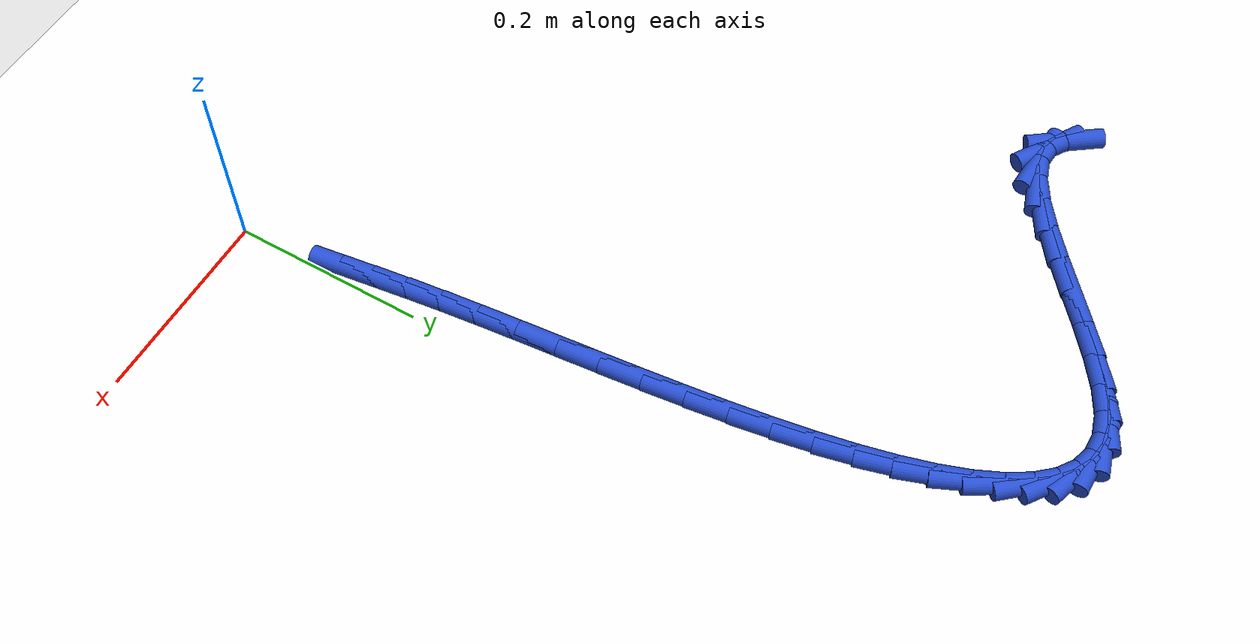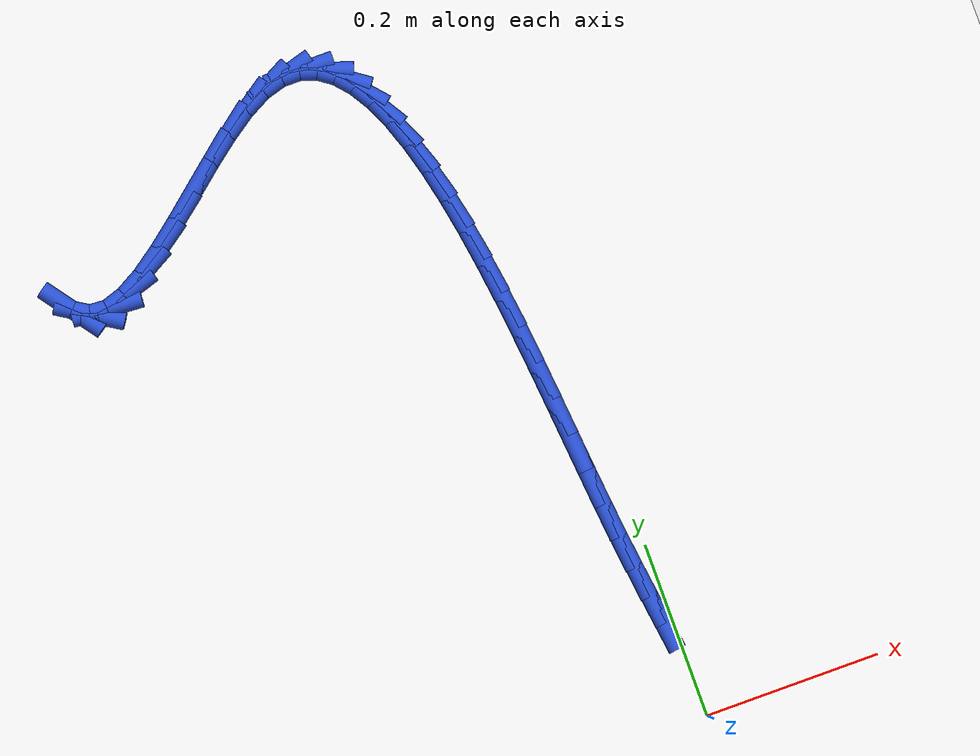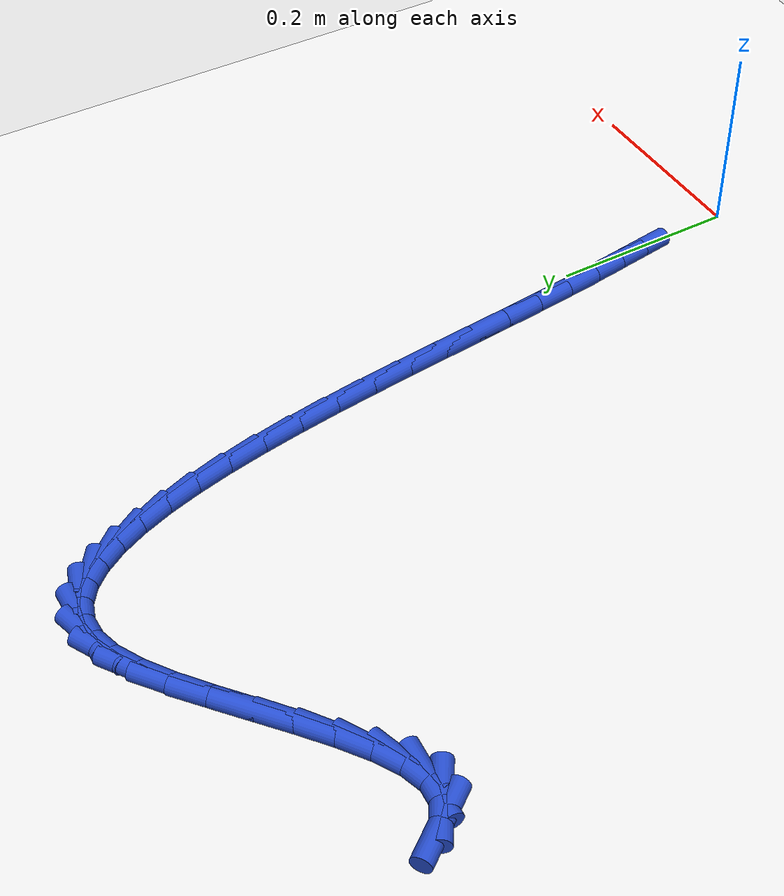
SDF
<sdf version="1.6">
 <world name="default">
  <model name="ground_plane">
   <static>1</static>
   <link name="link">
    <collision name="collision">
     <geometry><plane><normal>0 0 1</normal><size>100 100</size></plane></geometry>
     <surface><friction><ode><mu>100</mu><mu2>50</mu2></ode></friction></surface>
    </collision>
    <visual name="visual">
     <cast_shadows>0</cast_shadows>
     <geometry><plane><normal>0 0 1</normal><size>100 100</size></plane></geometry>
     <material>
      <script><uri>file://media/materials/scripts/gazebo.material</uri><name>Gazebo/WhiteGlow</name></script>
     </material>
    </visual>
   </link>
  </model>
  <model name="line">
   <link name="link_4">
    <pose>-0.011608350229617839 0.1196897497009344 0.01 0 1.57 -1.4349537684915146</pose>
    <collision name="collision">
     <geometry><cylinder><radius>0.01</radius><length>0.08</length></cylinder></geometry>
    </collision>
    <visual name="visual">
     <material>
      <script><name>Gazebo/Blue</name><uri>file://media/materials/scripts/gazebo.material</uri></script>
     </material>
     <geometry><cylinder><radius>0.01</radius><length>0.08</length></cylinder></geometry>
    </visual>
   </link>
   <link name="link_5">
    <pose>-0.01592034555189139 0.15123685332823003 0.01 0 1.57 -1.4374561681270017</pose>
    <collision name="collision">
     <geometry><cylinder><radius>0.01</radius><length>0.08</length></cylinder></geometry>
    </collision>
    <visual name="visual">
     <material>
      <script><name>Gazebo/Blue</name><uri>file://media/materials/scripts/gazebo.material</uri></script>
     </material>
     <geometry><cylinder><radius>0.01</radius><length>0.08</length></cylinder></geometry>
    </visual>
   </link>
   <link name="link_6">
    <pose>-0.020369244106530203 0.18440391080652804 0.01 0 1.57 -1.447466917418745</pose>
    <collision name="collision">
     <geometry><cylinder><radius>0.01</radius><length>0.08</length></cylinder></geometry>
    </collision>
    <visual name="visual">
     <material>
      <script><name>Gazebo/Blue</name><uri>file://media/materials/scripts/gazebo.material</uri></script>
     </material>
     <geometry><cylinder><radius>0.01</radius><length>0.08</length></cylinder></geometry>
    </visual>
   </link>
   <link name="link_7">
    <pose>-0.02474151595674313 0.21967596582091728 0.01 0 1.57 -1.4618403567247256</pose>
    <collision name="collision">
     <geometry><cylinder><radius>0.01</radius><length>0.08</length></cylinder></geometry>
    </collision>
    <visual name="visual">
     <material>
      <script><name>Gazebo/Blue</name><uri>file://media/materials/scripts/gazebo.material</uri></script>
     </material>
     <geometry><cylinder><radius>0.01</radius><length>0.08</length></cylinder></geometry>
    </visual>
   </link>
   <link name="link_8">
    <pose>-0.028869115283309703 0.25740912460940285 0.01 0 1.57 -1.4722458426684462</pose>
    <collision name="collision">
     <geometry><cylinder><radius>0.01</radius><length>0.08</length></cylinder></geometry>
    </collision>
    <visual name="visual">
     <material>
      <script><name>Gazebo/Blue</name><uri>file://media/materials/scripts/gazebo.material</uri></script>
     </material>
     <geometry><cylinder><radius>0.01</radius><length>0.08</length></cylinder></geometry>
    </visual>
   </link>
   <link name="link_9">
    <pose>-0.032813919533488854 0.2973077116323413 0.01 0 1.57 -1.4773231016164692</pose>
    <collision name="collision">
     <geometry><cylinder><radius>0.01</radius><length>0.08</length></cylinder></geometry>
    </collision>
    <visual name="visual">
     <material>
      <script><name>Gazebo/Blue</name><uri>file://media/materials/scripts/gazebo.material</uri></script>
     </material>
     <geometry><cylinder><radius>0.01</radius><length>0.08</length></cylinder></geometry>
    </visual>
   </link>
   <link name="link_10">
    <pose>-0.03671028916036978 0.33887057800625286 0.01 0 1.57 -1.477858585893769</pose>
    <collision name="collision">
     <geometry><cylinder><radius>0.01</radius><length>0.08</length></cylinder></geometry>
    </collision>
    <visual name="visual">
     <material>
      <script><name>Gazebo/Blue</name><uri>file://media/materials/scripts/gazebo.material</uri></script>
     </material>
     <geometry><cylinder><radius>0.01</radius><length>0.08</length></cylinder></geometry>
    </visual>
   </link>
   <link name="link_11">
    <pose>-0.04069261187931073 0.38159649756513436 0.01 0 1.57 -1.4742346559800295</pose>
    <collision name="collision">
     <geometry><cylinder><radius>0.01</radius><length>0.08</length></cylinder></geometry>
    </collision>
    <visual name="visual">
     <material>
      <script><name>Gazebo/Blue</name><uri>file://media/materials/scripts/gazebo.material</uri></script>
     </material>
     <geometry><cylinder><radius>0.01</radius><length>0.08</length></cylinder></geometry>
    </visual>
   </link>
   <link name="link_12">
    <pose>-0.04489527540566993 0.4249842441429827 0.01 0 1.57 -1.4665245592092344</pose>
    <collision name="collision">
     <geometry><cylinder><radius>0.01</radius><length>0.08</length></cylinder></geometry>
    </collision>
    <visual name="visual">
     <material>
      <script><name>Gazebo/Blue</name><uri>file://media/materials/scripts/gazebo.material</uri></script>
     </material>
     <geometry><cylinder><radius>0.01</radius><length>0.08</length></cylinder></geometry>
    </visual>
   </link>
   <link name="link_13">
    <pose>-0.04945266745480564 0.46853259157379484 0.01 0 1.57 -1.454526667403661</pose>
    <collision name="collision">
     <geometry><cylinder><radius>0.01</radius><length>0.08</length></cylinder></geometry>
    </collision>
    <visual name="visual">
     <material>
      <script><name>Gazebo/Blue</name><uri>file://media/materials/scripts/gazebo.material</uri></script>
     </material>
     <geometry><cylinder><radius>0.01</radius><length>0.08</length></cylinder></geometry>
    </visual>
   </link>
   <link name="link_14">
    <pose>-0.05449917574207611 0.5117403136915678 0.01 0 1.57 -1.4377524808276965</pose>
    <collision name="collision">
     <geometry><cylinder><radius>0.01</radius><length>0.08</length></cylinder></geometry>
    </collision>
    <visual name="visual">
     <material>
      <script><name>Gazebo/Blue</name><uri>file://media/materials/scripts/gazebo.material</uri></script>
     </material>
     <geometry><cylinder><radius>0.01</radius><length>0.08</length></cylinder></geometry>
    </visual>
   </link>
   <link name="link_15">
    <pose>-0.06016918798283958 0.5541061843302981 0.01 0 1.57 -1.4153690892996147</pose>
    <collision name="collision">
     <geometry><cylinder><radius>0.01</radius><length>0.08</length></cylinder></geometry>
    </collision>
    <visual name="visual">
     <material>
      <script><name>Gazebo/Blue</name><uri>file://media/materials/scripts/gazebo.material</uri></script>
     </material>
     <geometry><cylinder><radius>0.01</radius><length>0.08</length></cylinder></geometry>
    </visual>
   </link>
   <link name="link_16">
    <pose>-0.06659709189245427 0.595128977323983 0.01 0 1.57 -1.3860842035228762</pose>
    <collision name="collision">
     <geometry><cylinder><radius>0.01</radius><length>0.08</length></cylinder></geometry>
    </collision>
    <visual name="visual">
     <material>
      <script><name>Gazebo/Blue</name><uri>file://media/materials/scripts/gazebo.material</uri></script>
     </material>
     <geometry><cylinder><radius>0.01</radius><length>0.08</length></cylinder></geometry>
    </visual>
   </link>
   <link name="link_17">
    <pose>-0.07391727518627844 0.6343074665066192 0.01 0 1.57 -1.3479465450190615</pose>
    <collision name="collision">
     <geometry><cylinder><radius>0.01</radius><length>0.08</length></cylinder></geometry>
    </collision>
    <visual name="visual">
     <material>
      <script><name>Gazebo/Blue</name><uri>file://media/materials/scripts/gazebo.material</uri></script>
     </material>
     <geometry><cylinder><radius>0.01</radius><length>0.08</length></cylinder></geometry>
    </visual>
   </link>
   <link name="link_18">
    <pose>-0.08226412557967039 0.6711404257122037 0.01 0 1.57 -1.2980122350238568</pose>
    <collision name="collision">
     <geometry><cylinder><radius>0.01</radius><length>0.08</length></cylinder></geometry>
    </collision>
    <visual name="visual">
     <material>
      <script><name>Gazebo/Blue</name><uri>file://media/materials/scripts/gazebo.material</uri></script>
     </material>
     <geometry><cylinder><radius>0.01</radius><length>0.08</length></cylinder></geometry>
    </visual>
   </link>
   <link name="link_19">
    <pose>-0.09177203078798829 0.7051266287747334 0.01 0 1.57 -1.2317980982696835</pose>
    <collision name="collision">
     <geometry><cylinder><radius>0.01</radius><length>0.08</length></cylinder></geometry>
    </collision>
    <visual name="visual">
     <material>
      <script><name>Gazebo/Blue</name><uri>file://media/materials/scripts/gazebo.material</uri></script>
     </material>
     <geometry><cylinder><radius>0.01</radius><length>0.08</length></cylinder></geometry>
    </visual>
   </link>
   <link name="link_20">
    <pose>-0.1025753785265904 0.7357648495282051 0.01 0 1.57 -1.1424267949600215</pose>
    <collision name="collision">
     <geometry><cylinder><radius>0.01</radius><length>0.08</length></cylinder></geometry>
    </collision>
    <visual name="visual">
     <material>
      <script><name>Gazebo/Blue</name><uri>file://media/materials/scripts/gazebo.material</uri></script>
     </material>
     <geometry><cylinder><radius>0.01</radius><length>0.08</length></cylinder></geometry>
    </visual>
   </link>
   <link name="link_21">
    <pose>-0.11480855651083499 0.7625538618066158 0.01 0 1.57 -1.0194956856033608</pose>
    <collision name="collision">
     <geometry><cylinder><radius>0.01</radius><length>0.08</length></cylinder></geometry>
    </collision>
    <visual name="visual">
     <material>
      <script><name>Gazebo/Blue</name><uri>file://media/materials/scripts/gazebo.material</uri></script>
     </material>
     <geometry><cylinder><radius>0.01</radius><length>0.08</length></cylinder></geometry>
    </visual>
   </link>
   <link name="link_22">
    <pose>-0.12860595245608025 0.7849924394439622 0.01 0 1.57 -0.8485164700208907</pose>
    <collision name="collision">
     <geometry><cylinder><radius>0.01</radius><length>0.08</length></cylinder></geometry>
    </collision>
    <visual name="visual">
     <material>
      <script><name>Gazebo/Blue</name><uri>file://media/materials/scripts/gazebo.material</uri></script>
     </material>
     <geometry><cylinder><radius>0.01</radius><length>0.08</length></cylinder></geometry>
    </visual>
   </link>
   <link name="link_23">
    <pose>-0.14410195407768453 0.8025793562742415 0.01 0 1.57 -0.6147322027704885</pose>
    <collision name="collision">
     <geometry><cylinder><radius>0.01</radius><length>0.08</length></cylinder></geometry>
    </collision>
    <visual name="visual">
     <material>
      <script><name>Gazebo/Blue</name><uri>file://media/materials/scripts/gazebo.material</uri></script>
     </material>
     <geometry><cylinder><radius>0.01</radius><length>0.08</length></cylinder></geometry>
    </visual>
   </link>
   <link name="link_24">
    <pose>-0.16143094909100594 0.8148133861314502 0.01 0 1.57 -0.319313523385471</pose>
    <collision name="collision">
     <geometry><cylinder><radius>0.01</radius><length>0.08</length></cylinder></geometry>
    </collision>
    <visual name="visual">
     <material>
      <script><name>Gazebo/Blue</name><uri>file://media/materials/scripts/gazebo.material</uri></script>
     </material>
     <geometry><cylinder><radius>0.01</radius><length>0.08</length></cylinder></geometry>
    </visual>
   </link>
   <link name="link_25">
    <pose>-0.18072732521140283 0.8211933028495857 0.01 0 1.57 -0.0011485763049443863</pose>
    <collision name="collision">
     <geometry><cylinder><radius>0.01</radius><length>0.08</length></cylinder></geometry>
    </collision>
    <visual name="visual">
     <material>
      <script><name>Gazebo/Blue</name><uri>file://media/materials/scripts/gazebo.material</uri></script>
     </material>
     <geometry><cylinder><radius>0.01</radius><length>0.08</length></cylinder></geometry>
    </visual>
   </link>
   <link name="link_26">
    <pose>-0.2021254701542334 0.8212178802626445 0.01 0 1.57 0.2813449475201663</pose>
    <collision name="collision">
     <geometry><cylinder><radius>0.01</radius><length>0.08</length></cylinder></geometry>
    </collision>
    <visual name="visual">
     <material>
      <script><name>Gazebo/Blue</name><uri>file://media/materials/scripts/gazebo.material</uri></script>
     </material>
     <geometry><cylinder><radius>0.01</radius><length>0.08</length></cylinder></geometry>
    </visual>
   </link>
   <link name="link_27">
    <pose>-0.2257592683378419 0.8143874514847792 0.01 0 1.57 0.4851103924217919</pose>
    <collision name="collision">
     <geometry><cylinder><radius>0.01</radius><length>0.08</length></cylinder></geometry>
    </collision>
    <visual name="visual">
     <material>
      <script><name>Gazebo/Blue</name><uri>file://media/materials/scripts/gazebo.material</uri></script>
     </material>
     <geometry><cylinder><radius>0.01</radius><length>0.08</length></cylinder></geometry>
    </visual>
   </link>
   <link name="link_28">
    <pose>-0.25157663554437626 0.8007785048546628 0.01 0 1.57 0.601795979780397</pose>
    <collision name="collision">
     <geometry><cylinder><radius>0.01</radius><length>0.08</length></cylinder></geometry>
    </collision>
    <visual name="visual">
     <material>
      <script><name>Gazebo/Blue</name><uri>file://media/materials/scripts/gazebo.material</uri></script>
     </material>
     <geometry><cylinder><radius>0.01</radius><length>0.08</length></cylinder></geometry>
    </visual>
   </link>
   <link name="link_29">
    <pose>-0.27906252878228 0.7819018357084385 0.01 0 1.57 0.6652639838057579</pose>
    <collision name="collision">
     <geometry><cylinder><radius>0.01</radius><length>0.08</length></cylinder></geometry>
    </collision>
    <visual name="visual">
     <material>
      <script><name>Gazebo/Blue</name><uri>file://media/materials/scripts/gazebo.material</uri></script>
     </material>
     <geometry><cylinder><radius>0.01</radius><length>0.08</length></cylinder></geometry>
    </visual>
   </link>
   <link name="link_30">
    <pose>-0.30763107110891175 0.7594876922525049 0.01 0 1.57 0.6947438430289138</pose>
    <collision name="collision">
     <geometry><cylinder><radius>0.01</radius><length>0.08</length></cylinder></geometry>
    </collision>
    <visual name="visual">
     <material>
      <script><name>Gazebo/Blue</name><uri>file://media/materials/scripts/gazebo.material</uri></script>
     </material>
     <geometry><cylinder><radius>0.01</radius><length>0.08</length></cylinder></geometry>
    </visual>
   </link>
   <link name="link_31">
    <pose>-0.3366963855816303 0.7352663226932604 0.01 0 1.57 0.6978161044609688</pose>
    <collision name="collision">
     <geometry><cylinder><radius>0.01</radius><length>0.08</length></cylinder></geometry>
    </collision>
    <visual name="visual">
     <material>
      <script><name>Gazebo/Blue</name><uri>file://media/materials/scripts/gazebo.material</uri></script>
     </material>
     <geometry><cylinder><radius>0.01</radius><length>0.08</length></cylinder></geometry>
    </visual>
   </link>
   <link name="link_32">
    <pose>-0.36567259525779466 0.710967975237104 0.01 0 1.57 0.674829159289106</pose>
    <collision name="collision">
     <geometry><cylinder><radius>0.01</radius><length>0.08</length></cylinder></geometry>
    </collision>
    <visual name="visual">
     <material>
      <script><name>Gazebo/Blue</name><uri>file://media/materials/scripts/gazebo.material</uri></script>
     </material>
     <geometry><cylinder><radius>0.01</radius><length>0.08</length></cylinder></geometry>
    </visual>
   </link>
   <link name="link_33">
    <pose>-0.39397382319476326 0.6883228980904342 0.01 0 1.57 0.6189506479258206</pose>
    <collision name="collision">
     <geometry><cylinder><radius>0.01</radius><length>0.08</length></cylinder></geometry>
    </collision>
    <visual name="visual">
     <material>
      <script><name>Gazebo/Blue</name><uri>file://media/materials/scripts/gazebo.material</uri></script>
     </material>
     <geometry><cylinder><radius>0.01</radius><length>0.08</length></cylinder></geometry>
    </visual>
   </link>
   <link name="link_34">
    <pose>-0.4210141924498953 0.6690613394596497 0.01 0 1.57 0.5116767681322953</pose>
    <collision name="collision">
     <geometry><cylinder><radius>0.01</radius><length>0.08</length></cylinder></geometry>
    </collision>
    <visual name="visual">
     <material>
      <script><name>Gazebo/Blue</name><uri>file://media/materials/scripts/gazebo.material</uri></script>
     </material>
     <geometry><cylinder><radius>0.01</radius><length>0.08</length></cylinder></geometry>
    </visual>
   </link>
   <link name="link_35">
    <pose>-0.44620782608054943 0.6549135475511496 0.01 0 1.57 0.31050978372341387</pose>
    <collision name="collision">
     <geometry><cylinder><radius>0.01</radius><length>0.08</length></cylinder></geometry>
    </collision>
    <visual name="visual">
     <material>
      <script><name>Gazebo/Blue</name><uri>file://media/materials/scripts/gazebo.material</uri></script>
     </material>
     <geometry><cylinder><radius>0.01</radius><length>0.08</length></cylinder></geometry>
    </visual>
   </link>
   <link name="link_36">
    <pose>-0.46896884714408427 0.647609770571332 0.01 0 1.57 -0.06306543575020025</pose>
    <collision name="collision">
     <geometry><cylinder><radius>0.01</radius><length>0.08</length></cylinder></geometry>
    </collision>
    <visual name="visual">
     <material>
      <script><name>Gazebo/Blue</name><uri>file://media/materials/scripts/gazebo.material</uri></script>
     </material>
     <geometry><cylinder><radius>0.01</radius><length>0.08</length></cylinder></geometry>
    </visual>
   </link>
   <link name="link_37">
    <pose>-0.4887185126162929 0.6488569457109368 0.01 0 1.57 -0.5600312593526471</pose>
    <collision name="collision">
     <geometry><cylinder><radius>0.01</radius><length>0.08</length></cylinder></geometry>
    </collision>
    <visual name="visual">
     <material>
      <script><name>Gazebo/Blue</name><uri>file://media/materials/scripts/gazebo.material</uri></script>
     </material>
     <geometry><cylinder><radius>0.01</radius><length>0.08</length></cylinder></geometry>
    </visual>
   </link>
   <link name="link_38">
    <pose>-0.5052306494924509 0.659209941305267 0.01 0 1.57 -0.934736751435346</pose>
    <collision name="collision">
     <geometry><cylinder><radius>0.01</radius><length>0.08</length></cylinder></geometry>
    </collision>
    <visual name="visual">
     <material>
      <script><name>Gazebo/Blue</name><uri>file://media/materials/scripts/gazebo.material</uri></script>
     </material>
     <geometry><cylinder><radius>0.01</radius><length>0.08</length></cylinder></geometry>
    </visual>
   </link>
  </model>
 </world>
</sdf>
